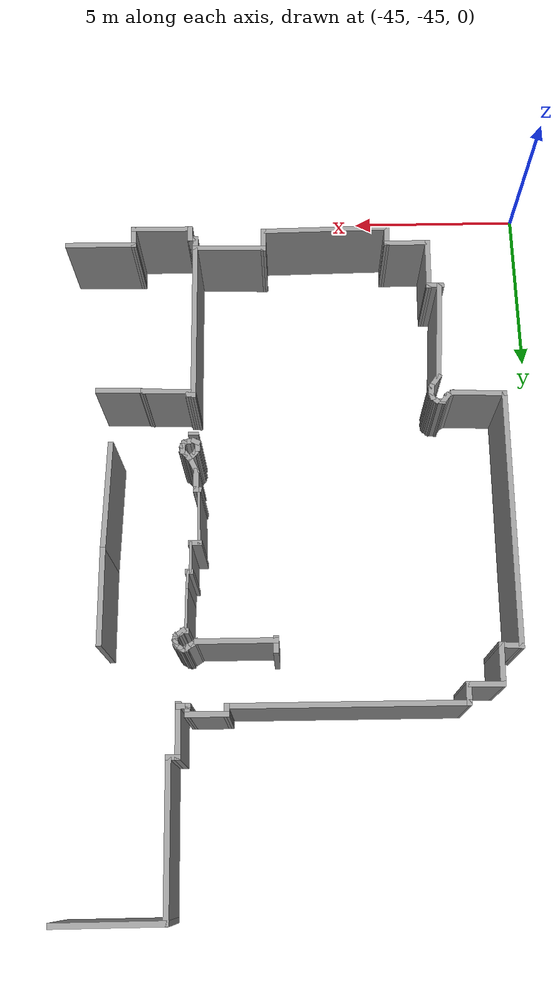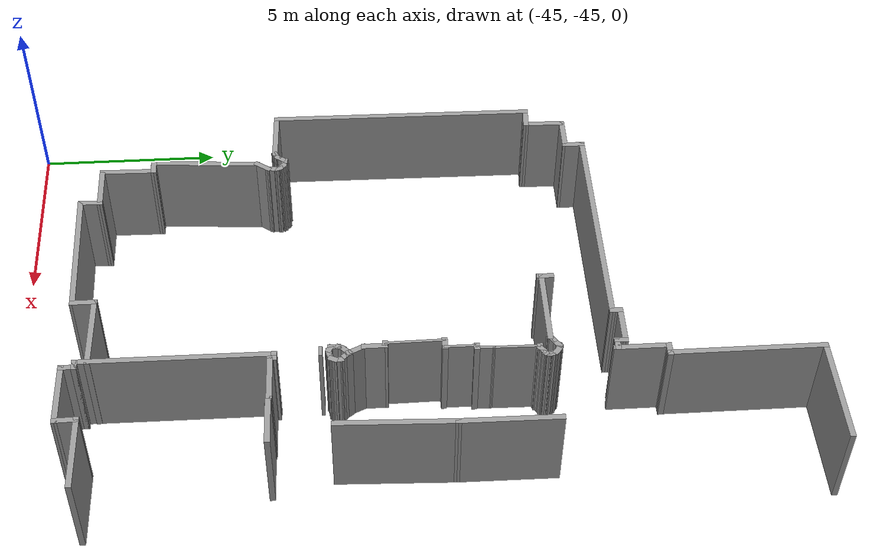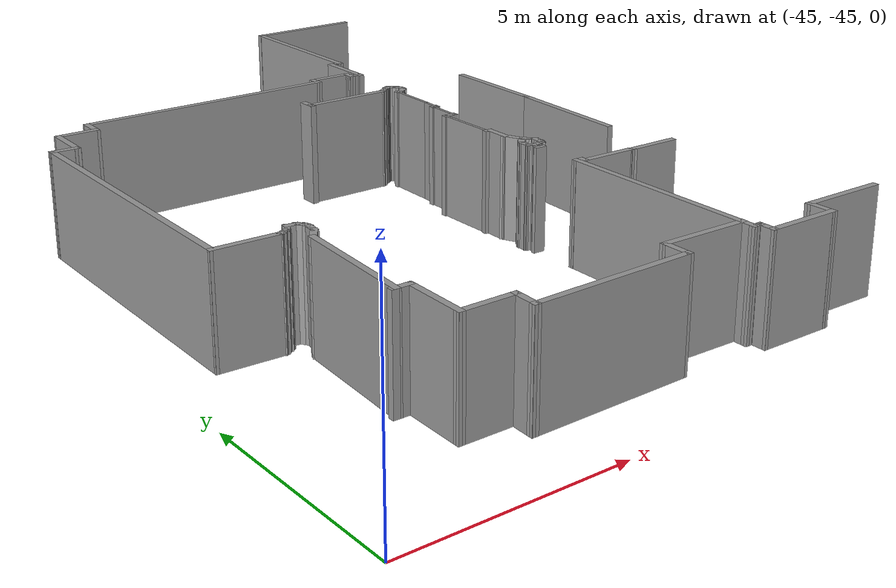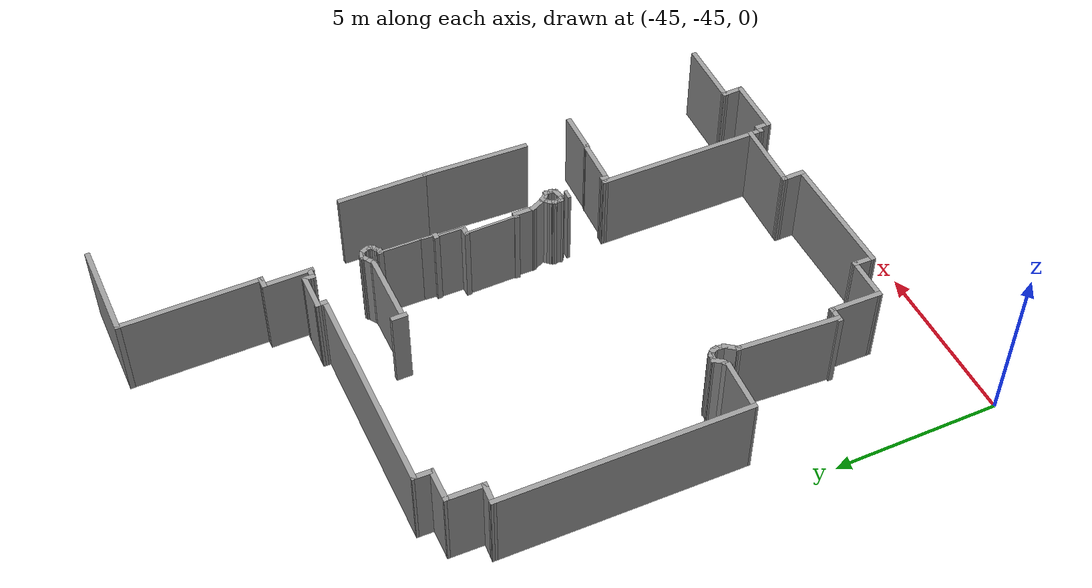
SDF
<sdf version="1.6">
 <model name="3_north">
  <pose>-14.229 -33.4428 0 0 -0 0</pose>
  <link name="Wall_1">
   <collision name="Wall_1_Collision">
    <geometry><box><size>1.5 0.15 2.5</size></box></geometry>
    <pose>0 0 1.25 0 -0 0</pose>
   </collision>
   <visual name="Wall_1_Visual">
    <pose>0 0 1.25 0 -0 0</pose>
    <geometry><box><size>1.5 0.15 2.5</size></box></geometry>
    <material>
     <script><uri>file://media/materials/scripts/gazebo.material</uri><name>Gazebo/Grey</name></script>
     <ambient>1 1 1 1</ambient>
    </material>
   </visual>
   <pose>-20.4742 4.82045 0 0 -0 1.5708</pose>
  </link>
  <link name="Wall_2">
   <collision name="Wall_2_Collision">
    <geometry><box><size>0.4 0.15 2.5</size></box></geometry>
    <pose>0 0 1.25 0 -0 0</pose>
   </collision>
   <visual name="Wall_2_Visual">
    <pose>0 0 1.25 0 -0 0</pose>
    <geometry><box><size>0.4 0.15 2.5</size></box></geometry>
    <material>
     <script><uri>file://media/materials/scripts/gazebo.material</uri><name>Gazebo/Grey</name></script>
     <ambient>1 1 1 1</ambient>
    </material>
   </visual>
   <pose>-20.3492 5.49545 0 0 -0 0</pose>
  </link>
  <link name="Wall_248">
   <collision name="Wall_248_Collision">
    <geometry><box><size>2.1053 0.15 2.5</size></box></geometry>
    <pose>0 0 1.25 0 -0 0</pose>
   </collision>
   <visual name="Wall_248_Visual">
    <pose>0 0 1.25 0 -0 0</pose>
    <geometry><box><size>2.1053 0.15 2.5</size></box></geometry>
    <material>
     <script><uri>file://media/materials/scripts/gazebo.material</uri><name>Gazebo/Grey</name></script>
     <ambient>1 1 1 1</ambient>
    </material>
   </visual>
   <pose>-18.005 -9.49655 0 0 -0 3.12395</pose>
  </link>
  <link name="Wall_249">
   <collision name="Wall_249_Collision">
    <geometry><box><size>0.690622 0.15 2.5</size></box></geometry>
    <pose>0 0 1.25 0 -0 0</pose>
   </collision>
   <visual name="Wall_249_Visual">
    <pose>0 0 1.25 0 -0 0</pose>
    <geometry><box><size>0.690622 0.15 2.5</size></box></geometry>
    <material>
     <script><uri>file://media/materials/scripts/gazebo.material</uri><name>Gazebo/Grey</name></script>
     <ambient>1 1 1 1</ambient>
    </material>
   </visual>
   <pose>-18.9768 -9.74955 0 0 0 -1.54952</pose>
  </link>
  <link name="Wall_250">
   <collision name="Wall_250_Collision">
    <geometry><box><size>1.82916 0.15 2.5</size></box></geometry>
    <pose>0 0 1.25 0 -0 0</pose>
   </collision>
   <visual name="Wall_250_Visual">
    <pose>0 0 1.25 0 -0 0</pose>
    <geometry><box><size>1.82916 0.15 2.5</size></box></geometry>
    <material>
     <script><uri>file://media/materials/scripts/gazebo.material</uri><name>Gazebo/Grey</name></script>
     <ambient>1 1 1 1</ambient>
    </material>
   </visual>
   <pose>-19.8105 -10.0083 0 0 -0 3.1279</pose>
  </link>
  <link name="Wall_251">
   <collision name="Wall_251_Collision">
    <geometry><box><size>0.4835 0.15 2.5</size></box></geometry>
    <pose>0 0 1.25 0 -0 0</pose>
   </collision>
   <visual name="Wall_251_Visual">
    <pose>0 0 1.25 0 -0 0</pose>
    <geometry><box><size>0.4835 0.15 2.5</size></box></geometry>
    <material>
     <script><uri>file://media/materials/scripts/gazebo.material</uri><name>Gazebo/Grey</name></script>
     <ambient>1 1 1 1</ambient>
    </material>
   </visual>
   <pose>-20.65 -9.83005 0 0 -0 1.5708</pose>
  </link>
  <link name="Wall_252">
   <collision name="Wall_252_Collision">
    <geometry><box><size>0.311 0.15 2.5</size></box></geometry>
    <pose>0 0 1.25 0 -0 0</pose>
   </collision>
   <visual name="Wall_252_Visual">
    <pose>0 0 1.25 0 -0 0</pose>
    <geometry><box><size>0.311 0.15 2.5</size></box></geometry>
    <material>
     <script><uri>file://media/materials/scripts/gazebo.material</uri><name>Gazebo/Grey</name></script>
     <ambient>1 1 1 1</ambient>
    </material>
   </visual>
   <pose>-20.7305 -9.6633 0 0 -0 3.14159</pose>
  </link>
  <link name="Wall_253">
   <collision name="Wall_253_Collision">
    <geometry><box><size>5.21005 0.15 2.5</size></box></geometry>
    <pose>0 0 1.25 0 -0 0</pose>
   </collision>
   <visual name="Wall_253_Visual">
    <pose>0 0 1.25 0 -0 0</pose>
    <geometry><box><size>5.21005 0.15 2.5</size></box></geometry>
    <material>
     <script><uri>file://media/materials/scripts/gazebo.material</uri><name>Gazebo/Grey</name></script>
     <ambient>1 1 1 1</ambient>
    </material>
   </visual>
   <pose>-20.7995 -7.1333 0 0 -0 1.56625</pose>
  </link>
  <link name="Wall_254">
   <collision name="Wall_254_Collision">
    <geometry><box><size>0.288478 0.15 2.5</size></box></geometry>
    <pose>0 0 1.25 0 -0 0</pose>
   </collision>
   <visual name="Wall_254_Visual">
    <pose>0 0 1.25 0 -0 0</pose>
    <geometry><box><size>0.288478 0.15 2.5</size></box></geometry>
    <material>
     <script><uri>file://media/materials/scripts/gazebo.material</uri><name>Gazebo/Grey</name></script>
     <ambient>1 1 1 1</ambient>
    </material>
   </visual>
   <pose>-20.719 -4.60905 0 0 0 -0.083141</pose>
  </link>
  <link name="Wall_255">
   <collision name="Wall_255_Collision">
    <geometry><box><size>0.242 0.15 2.5</size></box></geometry>
    <pose>0 0 1.25 0 -0 0</pose>
   </collision>
   <visual name="Wall_255_Visual">
    <pose>0 0 1.25 0 -0 0</pose>
    <geometry><box><size>0.242 0.15 2.5</size></box></geometry>
    <material>
     <script><uri>file://media/materials/scripts/gazebo.material</uri><name>Gazebo/Grey</name></script>
     <ambient>1 1 1 1</ambient>
    </material>
   </visual>
   <pose>-20.65 -4.6608 0 0 0 -1.5708</pose>
  </link>
  <link name="Wall_256">
   <collision name="Wall_256_Collision">
    <geometry><box><size>1.43846 0.15 2.5</size></box></geometry>
    <pose>0 0 1.25 0 -0 0</pose>
   </collision>
   <visual name="Wall_256_Visual">
    <pose>0 0 1.25 0 -0 0</pose>
    <geometry><box><size>1.43846 0.15 2.5</size></box></geometry>
    <material>
     <script><uri>file://media/materials/scripts/gazebo.material</uri><name>Gazebo/Grey</name></script>
     <ambient>1 1 1 1</ambient>
    </material>
   </visual>
   <pose>-20.006 -4.72405 0 0 0 -0.026779</pose>
  </link>
  <link name="Wall_257">
   <collision name="Wall_257_Collision">
    <geometry><box><size>0.244831 0.15 2.5</size></box></geometry>
    <pose>0 0 1.25 0 -0 0</pose>
   </collision>
   <visual name="Wall_257_Visual">
    <pose>0 0 1.25 0 -0 0</pose>
    <geometry><box><size>0.244831 0.15 2.5</size></box></geometry>
    <material>
     <script><uri>file://media/materials/scripts/gazebo.material</uri><name>Gazebo/Grey</name></script>
     <ambient>1 1 1 1</ambient>
    </material>
   </visual>
   <pose>-19.316 -4.7528 0 0 0 -0.244979</pose>
  </link>
  <link name="Wall_258">
   <collision name="Wall_258_Collision">
    <geometry><box><size>1.33648 0.15 2.5</size></box></geometry>
    <pose>0 0 1.25 0 -0 0</pose>
   </collision>
   <visual name="Wall_258_Visual">
    <pose>0 0 1.25 0 -0 0</pose>
    <geometry><box><size>1.33648 0.15 2.5</size></box></geometry>
    <material>
     <script><uri>file://media/materials/scripts/gazebo.material</uri><name>Gazebo/Grey</name></script>
     <ambient>1 1 1 1</ambient>
    </material>
   </visual>
   <pose>-18.6769 -4.77523 0 0 0 -0.018425</pose>
  </link>
  <link name="Wall_260">
   <collision name="Wall_260_Collision">
    <geometry><box><size>2.18039 0.15 2.5</size></box></geometry>
    <pose>0 0 1.25 0 -0 0</pose>
   </collision>
   <visual name="Wall_260_Visual">
    <pose>0 0 1.25 0 -0 0</pose>
    <geometry><box><size>2.18039 0.15 2.5</size></box></geometry>
    <material>
     <script><uri>file://media/materials/scripts/gazebo.material</uri><name>Gazebo/Grey</name></script>
     <ambient>1 1 1 1</ambient>
    </material>
   </visual>
   <pose>-21.8137 -9.31842 0 0 -0 3.11697</pose>
  </link>
  <link name="Wall_261">
   <collision name="Wall_261_Collision">
    <geometry><box><size>0.73 0.15 2.5</size></box></geometry>
    <pose>0 0 1.25 0 -0 0</pose>
   </collision>
   <visual name="Wall_261_Visual">
    <pose>0 0 1.25 0 -0 0</pose>
    <geometry><box><size>0.73 0.15 2.5</size></box></geometry>
    <material>
     <script><uri>file://media/materials/scripts/gazebo.material</uri><name>Gazebo/Grey</name></script>
     <ambient>1 1 1 1</ambient>
    </material>
   </visual>
   <pose>-22.8287 -9.58342 0 0 0 -1.5708</pose>
  </link>
  <link name="Wall_262">
   <collision name="Wall_262_Collision">
    <geometry><box><size>3.84034 0.15 2.5</size></box></geometry>
    <pose>0 0 1.25 0 -0 0</pose>
   </collision>
   <visual name="Wall_262_Visual">
    <pose>0 0 1.25 0 -0 0</pose>
    <geometry><box><size>3.84034 0.15 2.5</size></box></geometry>
    <material>
     <script><uri>file://media/materials/scripts/gazebo.material</uri><name>Gazebo/Grey</name></script>
     <ambient>1 1 1 1</ambient>
    </material>
   </visual>
   <pose>-24.6737 -9.89842 0 0 0 -3.12804</pose>
  </link>
  <link name="Wall_263">
   <collision name="Wall_263_Collision">
    <geometry><box><size>0.680377 0.15 2.5</size></box></geometry>
    <pose>0 0 1.25 0 -0 0</pose>
   </collision>
   <visual name="Wall_263_Visual">
    <pose>0 0 1.25 0 -0 0</pose>
    <geometry><box><size>0.680377 0.15 2.5</size></box></geometry>
    <material>
     <script><uri>file://media/materials/scripts/gazebo.material</uri><name>Gazebo/Grey</name></script>
     <ambient>1 1 1 1</ambient>
    </material>
   </visual>
   <pose>-26.5087 -9.65842 0 0 -0 1.53308</pose>
  </link>
  <link name="Wall_264">
   <collision name="Wall_264_Collision">
    <geometry><box><size>1.36 0.15 2.5</size></box></geometry>
    <pose>0 0 1.25 0 -0 0</pose>
   </collision>
   <visual name="Wall_264_Visual">
    <pose>0 0 1.25 0 -0 0</pose>
    <geometry><box><size>1.36 0.15 2.5</size></box></geometry>
    <material>
     <script><uri>file://media/materials/scripts/gazebo.material</uri><name>Gazebo/Grey</name></script>
     <ambient>1 1 1 1</ambient>
    </material>
   </visual>
   <pose>-27.1037 -9.39342 0 0 -0 3.14159</pose>
  </link>
  <link name="Wall_265">
   <collision name="Wall_265_Collision">
    <geometry><box><size>1.58031 0.15 2.5</size></box></geometry>
    <pose>0 0 1.25 0 -0 0</pose>
   </collision>
   <visual name="Wall_265_Visual">
    <pose>0 0 1.25 0 -0 0</pose>
    <geometry><box><size>1.58031 0.15 2.5</size></box></geometry>
    <material>
     <script><uri>file://media/materials/scripts/gazebo.material</uri><name>Gazebo/Grey</name></script>
     <ambient>1 1 1 1</ambient>
    </material>
   </visual>
   <pose>-27.6937 -8.67842 0 0 -0 1.54982</pose>
  </link>
  <link name="Wall_266">
   <collision name="Wall_266_Collision">
    <geometry><box><size>0.520135 0.15 2.5</size></box></geometry>
    <pose>0 0 1.25 0 -0 0</pose>
   </collision>
   <visual name="Wall_266_Visual">
    <pose>0 0 1.25 0 -0 0</pose>
    <geometry><box><size>0.520135 0.15 2.5</size></box></geometry>
    <material>
     <script><uri>file://media/materials/scripts/gazebo.material</uri><name>Gazebo/Grey</name></script>
     <ambient>1 1 1 1</ambient>
    </material>
   </visual>
   <pose>-27.8637 -7.96342 0 0 -0 3.14159</pose>
  </link>
  <link name="Wall_269">
   <collision name="Wall_269_Collision">
    <geometry><box><size>3.07754 0.15 2.5</size></box></geometry>
    <pose>0 0 1.25 0 -0 0</pose>
   </collision>
   <visual name="Wall_269_Visual">
    <pose>0 0 1.25 0 -0 0</pose>
    <geometry><box><size>3.07754 0.15 2.5</size></box></geometry>
    <material>
     <script><uri>file://media/materials/scripts/gazebo.material</uri><name>Gazebo/Grey</name></script>
     <ambient>1 1 1 1</ambient>
    </material>
   </visual>
   <pose>-27.8933 -6.50083 0 0 -0 1.50397</pose>
  </link>
  <link name="Wall_270">
   <collision name="Wall_270_Collision">
    <geometry><box><size>0.529674 0.15 2.5</size></box></geometry>
    <pose>0 0 1.25 0 -0 0</pose>
   </collision>
   <visual name="Wall_270_Visual">
    <pose>0 0 1.25 0 -0 0</pose>
    <geometry><box><size>0.529674 0.15 2.5</size></box></geometry>
    <material>
     <script><uri>file://media/materials/scripts/gazebo.material</uri><name>Gazebo/Grey</name></script>
     <ambient>1 1 1 1</ambient>
    </material>
   </visual>
   <pose>-27.6863 -4.88508 0 0 -0 0.957589</pose>
  </link>
  <link name="Wall_271">
   <collision name="Wall_271_Collision">
    <geometry><box><size>0.381147 0.15 2.5</size></box></geometry>
    <pose>0 0 1.25 0 -0 0</pose>
   </collision>
   <visual name="Wall_271_Visual">
    <pose>0 0 1.25 0 -0 0</pose>
    <geometry><box><size>0.381147 0.15 2.5</size></box></geometry>
    <material>
     <script><uri>file://media/materials/scripts/gazebo.material</uri><name>Gazebo/Grey</name></script>
     <ambient>1 1 1 1</ambient>
    </material>
   </visual>
   <pose>-27.5655 -4.61483 0 0 -0 1.47113</pose>
  </link>
  <link name="Wall_272">
   <collision name="Wall_272_Collision">
    <geometry><box><size>0.270064 0.15 2.5</size></box></geometry>
    <pose>0 0 1.25 0 -0 0</pose>
   </collision>
   <visual name="Wall_272_Visual">
    <pose>0 0 1.25 0 -0 0</pose>
    <geometry><box><size>0.270064 0.15 2.5</size></box></geometry>
    <material>
     <script><uri>file://media/materials/scripts/gazebo.material</uri><name>Gazebo/Grey</name></script>
     <ambient>1 1 1 1</ambient>
    </material>
   </visual>
   <pose>-27.5713 -4.44233 0 0 -0 1.86225</pose>
  </link>
  <link name="Wall_273">
   <collision name="Wall_273_Collision">
    <geometry><box><size>0.304717 0.15 2.5</size></box></geometry>
    <pose>0 0 1.25 0 -0 0</pose>
   </collision>
   <visual name="Wall_273_Visual">
    <pose>0 0 1.25 0 -0 0</pose>
    <geometry><box><size>0.304717 0.15 2.5</size></box></geometry>
    <material>
     <script><uri>file://media/materials/scripts/gazebo.material</uri><name>Gazebo/Grey</name></script>
     <ambient>1 1 1 1</ambient>
    </material>
   </visual>
   <pose>-27.646 -4.33308 0 0 -0 2.40878</pose>
  </link>
  <link name="Wall_274">
   <collision name="Wall_274_Collision">
    <geometry><box><size>0.335432 0.15 2.5</size></box></geometry>
    <pose>0 0 1.25 0 -0 0</pose>
   </collision>
   <visual name="Wall_274_Visual">
    <pose>0 0 1.25 0 -0 0</pose>
    <geometry><box><size>0.335432 0.15 2.5</size></box></geometry>
    <material>
     <script><uri>file://media/materials/scripts/gazebo.material</uri><name>Gazebo/Grey</name></script>
     <ambient>1 1 1 1</ambient>
    </material>
   </visual>
   <pose>-27.7955 -4.26983 0 0 -0 3.01724</pose>
  </link>
  <link name="Wall_275">
   <collision name="Wall_275_Collision">
    <geometry><box><size>0.389299 0.15 2.5</size></box></geometry>
    <pose>0 0 1.25 0 -0 0</pose>
   </collision>
   <visual name="Wall_275_Visual">
    <pose>0 0 1.25 0 -0 0</pose>
    <geometry><box><size>0.389299 0.15 2.5</size></box></geometry>
    <material>
     <script><uri>file://media/materials/scripts/gazebo.material</uri><name>Gazebo/Grey</name></script>
     <ambient>1 1 1 1</ambient>
    </material>
   </visual>
   <pose>-27.9565 -4.35608 0 0 0 -2.18546</pose>
  </link>
  <link name="Wall_276">
   <collision name="Wall_276_Collision">
    <geometry><box><size>0.319795 0.15 2.5</size></box></geometry>
    <pose>0 0 1.25 0 -0 0</pose>
   </collision>
   <visual name="Wall_276_Visual">
    <pose>0 0 1.25 0 -0 0</pose>
    <geometry><box><size>0.319795 0.15 2.5</size></box></geometry>
    <material>
     <script><uri>file://media/materials/scripts/gazebo.material</uri><name>Gazebo/Grey</name></script>
     <ambient>1 1 1 1</ambient>
    </material>
   </visual>
   <pose>-28.1003 -4.49408 0 0 0 -2.64765</pose>
  </link>
  <link name="Wall_277">
   <collision name="Wall_277_Collision">
    <geometry><box><size>1.61163 0.15 2.5</size></box></geometry>
    <pose>0 0 1.25 0 -0 0</pose>
   </collision>
   <visual name="Wall_277_Visual">
    <pose>0 0 1.25 0 -0 0</pose>
    <geometry><box><size>1.61163 0.15 2.5</size></box></geometry>
    <material>
     <script><uri>file://media/materials/scripts/gazebo.material</uri><name>Gazebo/Grey</name></script>
     <ambient>1 1 1 1</ambient>
    </material>
   </visual>
   <pose>-28.9053 -4.50558 0 0 -0 3.10224</pose>
  </link>
  <link name="Wall_278">
   <collision name="Wall_278_Collision">
    <geometry><box><size>7.40695 0.15 2.5</size></box></geometry>
    <pose>0 0 1.25 0 -0 0</pose>
   </collision>
   <visual name="Wall_278_Visual">
    <pose>0 0 1.25 0 -0 0</pose>
    <geometry><box><size>7.40695 0.15 2.5</size></box></geometry>
    <material>
     <script><uri>file://media/materials/scripts/gazebo.material</uri><name>Gazebo/Grey</name></script>
     <ambient>1 1 1 1</ambient>
    </material>
   </visual>
   <pose>-29.5895 -0.84858 0 0 -0 1.55812</pose>
  </link>
  <link name="Wall_280">
   <collision name="Wall_280_Collision">
    <geometry><box><size>0.6916 0.15 2.5</size></box></geometry>
    <pose>0 0 1.25 0 -0 0</pose>
   </collision>
   <visual name="Wall_280_Visual">
    <pose>0 0 1.25 0 -0 0</pose>
    <geometry><box><size>0.6916 0.15 2.5</size></box></geometry>
    <material>
     <script><uri>file://media/materials/scripts/gazebo.material</uri><name>Gazebo/Grey</name></script>
     <ambient>1 1 1 1</ambient>
    </material>
   </visual>
   <pose>-29.2733 2.76242 0 0 0 -0.063743</pose>
  </link>
  <link name="Wall_281">
   <collision name="Wall_281_Collision">
    <geometry><box><size>1.18526 0.15 2.5</size></box></geometry>
    <pose>0 0 1.25 0 -0 0</pose>
   </collision>
   <visual name="Wall_281_Visual">
    <pose>0 0 1.25 0 -0 0</pose>
    <geometry><box><size>1.18526 0.15 2.5</size></box></geometry>
    <material>
     <script><uri>file://media/materials/scripts/gazebo.material</uri><name>Gazebo/Grey</name></script>
     <ambient>1 1 1 1</ambient>
    </material>
   </visual>
   <pose>-28.9915 3.26267 0 0 -0 1.54858</pose>
  </link>
  <link name="Wall_282">
   <collision name="Wall_282_Collision">
    <geometry><box><size>1.05857 0.15 2.5</size></box></geometry>
    <pose>0 0 1.25 0 -0 0</pose>
   </collision>
   <visual name="Wall_282_Visual">
    <pose>0 0 1.25 0 -0 0</pose>
    <geometry><box><size>1.05857 0.15 2.5</size></box></geometry>
    <material>
     <script><uri>file://media/materials/scripts/gazebo.material</uri><name>Gazebo/Grey</name></script>
     <ambient>1 1 1 1</ambient>
    </material>
   </visual>
   <pose>-28.5258 3.77442 0 0 0 -0.012658</pose>
  </link>
  <link name="Wall_283">
   <collision name="Wall_283_Collision">
    <geometry><box><size>0.633137 0.15 2.5</size></box></geometry>
    <pose>0 0 1.25 0 -0 0</pose>
   </collision>
   <visual name="Wall_283_Visual">
    <pose>0 0 1.25 0 -0 0</pose>
    <geometry><box><size>0.633137 0.15 2.5</size></box></geometry>
    <material>
     <script><uri>file://media/materials/scripts/gazebo.material</uri><name>Gazebo/Grey</name></script>
     <ambient>1 1 1 1</ambient>
    </material>
   </visual>
   <pose>-28.0658 4.01017 0 0 -0 1.54699</pose>
  </link>
  <link name="Wall_284">
   <collision name="Wall_284_Collision">
    <geometry><box><size>6.47504 0.15 2.5</size></box></geometry>
    <pose>0 0 1.25 0 -0 0</pose>
   </collision>
   <visual name="Wall_284_Visual">
    <pose>0 0 1.25 0 -0 0</pose>
    <geometry><box><size>6.47504 0.15 2.5</size></box></geometry>
    <material>
     <script><uri>file://media/materials/scripts/gazebo.material</uri><name>Gazebo/Grey</name></script>
     <ambient>1 1 1 1</ambient>
    </material>
   </visual>
   <pose>-24.8975 4.23442 0 0 0 -0.005454</pose>
  </link>
  <link name="Wall_285">
   <collision name="Wall_285_Collision">
    <geometry><box><size>0.357 0.15 2.5</size></box></geometry>
    <pose>0 0 1.25 0 -0 0</pose>
   </collision>
   <visual name="Wall_285_Visual">
    <pose>0 0 1.25 0 -0 0</pose>
    <geometry><box><size>0.357 0.15 2.5</size></box></geometry>
    <material>
     <script><uri>file://media/materials/scripts/gazebo.material</uri><name>Gazebo/Grey</name></script>
     <ambient>1 1 1 1</ambient>
    </material>
   </visual>
   <pose>-21.735 4.32067 0 0 -0 1.5708</pose>
  </link>
  <link name="Wall_286">
   <collision name="Wall_286_Collision">
    <geometry><box><size>1.17356 0.15 2.5</size></box></geometry>
    <pose>0 0 1.25 0 -0 0</pose>
   </collision>
   <visual name="Wall_286_Visual">
    <pose>0 0 1.25 0 -0 0</pose>
    <geometry><box><size>1.17356 0.15 2.5</size></box></geometry>
    <material>
     <script><uri>file://media/materials/scripts/gazebo.material</uri><name>Gazebo/Grey</name></script>
     <ambient>1 1 1 1</ambient>
    </material>
   </visual>
   <pose>-21.2233 4.41842 0 0 0 -0.011235</pose>
  </link>
  <link name="Wall_287">
   <collision name="Wall_287_Collision">
    <geometry><box><size>0.368802 0.15 2.5</size></box></geometry>
    <pose>0 0 1.25 0 -0 0</pose>
   </collision>
   <visual name="Wall_287_Visual">
    <pose>0 0 1.25 0 -0 0</pose>
    <geometry><box><size>0.368802 0.15 2.5</size></box></geometry>
    <material>
     <script><uri>file://media/materials/scripts/gazebo.material</uri><name>Gazebo/Grey</name></script>
     <ambient>1 1 1 1</ambient>
    </material>
   </visual>
   <pose>-20.7173 4.30342 0 0 0 -1.62338</pose>
  </link>
  <link name="Wall_288">
   <collision name="Wall_288_Collision">
    <geometry><box><size>0.3915 0.15 2.5</size></box></geometry>
    <pose>0 0 1.25 0 -0 0</pose>
   </collision>
   <visual name="Wall_288_Visual">
    <pose>0 0 1.25 0 -0 0</pose>
    <geometry><box><size>0.3915 0.15 2.5</size></box></geometry>
    <material>
     <script><uri>file://media/materials/scripts/gazebo.material</uri><name>Gazebo/Grey</name></script>
     <ambient>1 1 1 1</ambient>
    </material>
   </visual>
   <pose>-20.6023 4.19417 0 0 -0 0</pose>
  </link>
  <link name="Wall_290">
   <collision name="Wall_290_Collision">
    <geometry><box><size>0.469384 0.15 2.5</size></box></geometry>
    <pose>0 0 1.25 0 -0 0</pose>
   </collision>
   <visual name="Wall_290_Visual">
    <pose>0 0 1.25 0 -0 0</pose>
    <geometry><box><size>0.469384 0.15 2.5</size></box></geometry>
    <material>
     <script><uri>file://media/materials/scripts/gazebo.material</uri><name>Gazebo/Grey</name></script>
     <ambient>1 1 1 1</ambient>
    </material>
   </visual>
   <pose>-23.044 2.61079 0 0 0 -1.5708</pose>
  </link>
  <link name="Wall_292">
   <collision name="Wall_292_Collision">
    <geometry><box><size>2.25437 0.15 2.5</size></box></geometry>
    <pose>0 0 1.25 0 -0 0</pose>
   </collision>
   <visual name="Wall_292_Visual">
    <pose>0 0 1.25 0 -0 0</pose>
    <geometry><box><size>2.25437 0.15 2.5</size></box></geometry>
    <material>
     <script><uri>file://media/materials/scripts/gazebo.material</uri><name>Gazebo/Grey</name></script>
     <ambient>1 1 1 1</ambient>
    </material>
   </visual>
   <pose>-21.9893 2.50183 0 0 0 -0.004132</pose>
  </link>
  <link name="Wall_293">
   <collision name="Wall_293_Collision">
    <geometry><box><size>0.294724 0.15 2.5</size></box></geometry>
    <pose>0 0 1.25 0 -0 0</pose>
   </collision>
   <visual name="Wall_293_Visual">
    <pose>0 0 1.25 0 -0 0</pose>
    <geometry><box><size>0.294724 0.15 2.5</size></box></geometry>
    <material>
     <script><uri>file://media/materials/scripts/gazebo.material</uri><name>Gazebo/Grey</name></script>
     <ambient>1 1 1 1</ambient>
    </material>
   </visual>
   <pose>-20.8763 2.53661 0 0 -0 0.571337</pose>
  </link>
  <link name="Wall_294">
   <collision name="Wall_294_Collision">
    <geometry><box><size>0.294724 0.15 2.5</size></box></geometry>
    <pose>0 0 1.25 0 -0 0</pose>
   </collision>
   <visual name="Wall_294_Visual">
    <pose>0 0 1.25 0 -0 0</pose>
    <geometry><box><size>0.294724 0.15 2.5</size></box></geometry>
    <material>
     <script><uri>file://media/materials/scripts/gazebo.material</uri><name>Gazebo/Grey</name></script>
     <ambient>1 1 1 1</ambient>
    </material>
   </visual>
   <pose>-20.7546 2.61488 0 0 -0 0.571337</pose>
  </link>
  <link name="Wall_295">
   <collision name="Wall_295_Collision">
    <geometry><box><size>0.217915 0.15 2.5</size></box></geometry>
    <pose>0 0 1.25 0 -0 0</pose>
   </collision>
   <visual name="Wall_295_Visual">
    <pose>0 0 1.25 0 -0 0</pose>
    <geometry><box><size>0.217915 0.15 2.5</size></box></geometry>
    <material>
     <script><uri>file://media/materials/scripts/gazebo.material</uri><name>Gazebo/Grey</name></script>
     <ambient>1 1 1 1</ambient>
    </material>
   </visual>
   <pose>-20.6676 2.67575 0 0 -0 0.694738</pose>
  </link>
  <link name="Wall_296">
   <collision name="Wall_296_Collision">
    <geometry><box><size>0.219565 0.15 2.5</size></box></geometry>
    <pose>0 0 1.25 0 -0 0</pose>
   </collision>
   <visual name="Wall_296_Visual">
    <pose>0 0 1.25 0 -0 0</pose>
    <geometry><box><size>0.219565 0.15 2.5</size></box></geometry>
    <material>
     <script><uri>file://media/materials/scripts/gazebo.material</uri><name>Gazebo/Grey</name></script>
     <ambient>1 1 1 1</ambient>
    </material>
   </visual>
   <pose>-20.6067 2.69748 0 0 -0 0</pose>
  </link>
  <link name="Wall_297">
   <collision name="Wall_297_Collision">
    <geometry><box><size>0.227776 0.15 2.5</size></box></geometry>
    <pose>0 0 1.25 0 -0 0</pose>
   </collision>
   <visual name="Wall_297_Visual">
    <pose>0 0 1.25 0 -0 0</pose>
    <geometry><box><size>0.227776 0.15 2.5</size></box></geometry>
    <material>
     <script><uri>file://media/materials/scripts/gazebo.material</uri><name>Gazebo/Grey</name></script>
     <ambient>1 1 1 1</ambient>
    </material>
   </visual>
   <pose>-20.5372 2.68009 0 0 0 -0.463648</pose>
  </link>
  <link name="Wall_298">
   <collision name="Wall_298_Collision">
    <geometry><box><size>0.261359 0.15 2.5</size></box></geometry>
    <pose>0 0 1.25 0 -0 0</pose>
   </collision>
   <visual name="Wall_298_Visual">
    <pose>0 0 1.25 0 -0 0</pose>
    <geometry><box><size>0.261359 0.15 2.5</size></box></geometry>
    <material>
     <script><uri>file://media/materials/scripts/gazebo.material</uri><name>Gazebo/Grey</name></script>
     <ambient>1 1 1 1</ambient>
    </material>
   </visual>
   <pose>-20.4589 2.62792 0 0 0 -0.674741</pose>
  </link>
  <link name="Wall_299">
   <collision name="Wall_299_Collision">
    <geometry><box><size>0.271116 0.15 2.5</size></box></geometry>
    <pose>0 0 1.25 0 -0 0</pose>
   </collision>
   <visual name="Wall_299_Visual">
    <pose>0 0 1.25 0 -0 0</pose>
    <geometry><box><size>0.271116 0.15 2.5</size></box></geometry>
    <material>
     <script><uri>file://media/materials/scripts/gazebo.material</uri><name>Gazebo/Grey</name></script>
     <ambient>1 1 1 1</ambient>
    </material>
   </visual>
   <pose>-20.3937 2.53661 0 0 0 -1.20362</pose>
  </link>
  <link name="Wall_3">
   <collision name="Wall_3_Collision">
    <geometry><box><size>4.15574 0.15 2.5</size></box></geometry>
    <pose>0 0 1.25 0 -0 0</pose>
   </collision>
   <visual name="Wall_3_Visual">
    <pose>0 0 1.25 0 -0 0</pose>
    <geometry><box><size>4.15574 0.15 2.5</size></box></geometry>
    <material>
     <script><uri>file://media/materials/scripts/gazebo.material</uri><name>Gazebo/Grey</name></script>
     <ambient>1 1 1 1</ambient>
    </material>
   </visual>
   <pose>-20.2371 7.49832 0 0 -0 1.57222</pose>
  </link>
  <link name="Wall_300">
   <collision name="Wall_300_Collision">
    <geometry><box><size>0.219565 0.15 2.5</size></box></geometry>
    <pose>0 0 1.25 0 -0 0</pose>
   </collision>
   <visual name="Wall_300_Visual">
    <pose>0 0 1.25 0 -0 0</pose>
    <geometry><box><size>0.219565 0.15 2.5</size></box></geometry>
    <material>
     <script><uri>file://media/materials/scripts/gazebo.material</uri><name>Gazebo/Grey</name></script>
     <ambient>1 1 1 1</ambient>
    </material>
   </visual>
   <pose>-20.372 2.44531 0 0 0 -1.5708</pose>
  </link>
  <link name="Wall_301">
   <collision name="Wall_301_Collision">
    <geometry><box><size>0.243655 0.15 2.5</size></box></geometry>
    <pose>0 0 1.25 0 -0 0</pose>
   </collision>
   <visual name="Wall_301_Visual">
    <pose>0 0 1.25 0 -0 0</pose>
    <geometry><box><size>0.243655 0.15 2.5</size></box></geometry>
    <material>
     <script><uri>file://media/materials/scripts/gazebo.material</uri><name>Gazebo/Grey</name></script>
     <ambient>1 1 1 1</ambient>
    </material>
   </visual>
   <pose>-20.3893 2.36705 0 0 0 -1.9513</pose>
  </link>
  <link name="Wall_302">
   <collision name="Wall_302_Collision">
    <geometry><box><size>0.251408 0.15 2.5</size></box></geometry>
    <pose>0 0 1.25 0 -0 0</pose>
   </collision>
   <visual name="Wall_302_Visual">
    <pose>0 0 1.25 0 -0 0</pose>
    <geometry><box><size>0.251408 0.15 2.5</size></box></geometry>
    <material>
     <script><uri>file://media/materials/scripts/gazebo.material</uri><name>Gazebo/Grey</name></script>
     <ambient>1 1 1 1</ambient>
    </material>
   </visual>
   <pose>-20.4502 2.29748 0 0 0 -2.60117</pose>
  </link>
  <link name="Wall_303">
   <collision name="Wall_303_Collision">
    <geometry><box><size>0.261359 0.15 2.5</size></box></geometry>
    <pose>0 0 1.25 0 -0 0</pose>
   </collision>
   <visual name="Wall_303_Visual">
    <pose>0 0 1.25 0 -0 0</pose>
    <geometry><box><size>0.261359 0.15 2.5</size></box></geometry>
    <material>
     <script><uri>file://media/materials/scripts/gazebo.material</uri><name>Gazebo/Grey</name></script>
     <ambient>1 1 1 1</ambient>
    </material>
   </visual>
   <pose>-20.5372 2.23662 0 0 0 -2.46685</pose>
  </link>
  <link name="Wall_304">
   <collision name="Wall_304_Collision">
    <geometry><box><size>0.219565 0.15 2.5</size></box></geometry>
    <pose>0 0 1.25 0 -0 0</pose>
   </collision>
   <visual name="Wall_304_Visual">
    <pose>0 0 1.25 0 -0 0</pose>
    <geometry><box><size>0.219565 0.15 2.5</size></box></geometry>
    <material>
     <script><uri>file://media/materials/scripts/gazebo.material</uri><name>Gazebo/Grey</name></script>
     <ambient>1 1 1 1</ambient>
    </material>
   </visual>
   <pose>-20.6153 2.20192 0 0 -0 3.13904</pose>
  </link>
  <link name="Wall_305">
   <collision name="Wall_305_Collision">
    <geometry><box><size>1.25292 0.07 2.5</size></box></geometry>
    <pose>0 0 1.25 0 -0 0</pose>
   </collision>
   <visual name="Wall_305_Visual">
    <pose>0 0 1.25 0 -0 0</pose>
    <geometry><box><size>1.25292 0.07 2.5</size></box></geometry>
    <material>
     <script><uri>file://media/materials/scripts/gazebo.material</uri><name>Gazebo/Grey</name></script>
     <ambient>1 1 1 1</ambient>
    </material>
   </visual>
   <pose>-20.659 1.61051 0 0 0 -1.58601</pose>
  </link>
  <link name="Wall_306">
   <collision name="Wall_306_Collision">
    <geometry><box><size>0.505329 0.07 2.5</size></box></geometry>
    <pose>0 0 1.25 0 -0 0</pose>
   </collision>
   <visual name="Wall_306_Visual">
    <pose>0 0 1.25 0 -0 0</pose>
    <geometry><box><size>0.505329 0.07 2.5</size></box></geometry>
    <material>
     <script><uri>file://media/materials/scripts/gazebo.material</uri><name>Gazebo/Grey</name></script>
     <ambient>1 1 1 1</ambient>
    </material>
   </visual>
   <pose>-20.681 0.801509 0 0 0 -1.6305</pose>
  </link>
  <link name="Wall_307">
   <collision name="Wall_307_Collision">
    <geometry><box><size>0.21087 0.15 2.5</size></box></geometry>
    <pose>0 0 1.25 0 -0 0</pose>
   </collision>
   <visual name="Wall_307_Visual">
    <pose>0 0 1.25 0 -0 0</pose>
    <geometry><box><size>0.21087 0.15 2.5</size></box></geometry>
    <material>
     <script><uri>file://media/materials/scripts/gazebo.material</uri><name>Gazebo/Grey</name></script>
     <ambient>1 1 1 1</ambient>
    </material>
   </visual>
   <pose>-20.7245 0.584009 0 0 -0 3.14159</pose>
  </link>
  <link name="Wall_308">
   <collision name="Wall_308_Collision">
    <geometry><box><size>0.878306 0.07 2.5</size></box></geometry>
    <pose>0 0 1.25 0 -0 0</pose>
   </collision>
   <visual name="Wall_308_Visual">
    <pose>0 0 1.25 0 -0 0</pose>
    <geometry><box><size>0.878306 0.07 2.5</size></box></geometry>
    <material>
     <script><uri>file://media/materials/scripts/gazebo.material</uri><name>Gazebo/Grey</name></script>
     <ambient>1 1 1 1</ambient>
    </material>
   </visual>
   <pose>-20.759 0.180009 0 0 0 -1.5807</pose>
  </link>
  <link name="Wall_309">
   <collision name="Wall_309_Collision">
    <geometry><box><size>0.376254 0.15 2.5</size></box></geometry>
    <pose>0 0 1.25 0 -0 0</pose>
   </collision>
   <visual name="Wall_309_Visual">
    <pose>0 0 1.25 0 -0 0</pose>
    <geometry><box><size>0.376254 0.15 2.5</size></box></geometry>
    <material>
     <script><uri>file://media/materials/scripts/gazebo.material</uri><name>Gazebo/Grey</name></script>
     <ambient>1 1 1 1</ambient>
    </material>
   </visual>
   <pose>-20.876 -0.223991 0 0 -0 3.14159</pose>
  </link>
  <link name="Wall_310">
   <collision name="Wall_310_Collision">
    <geometry><box><size>1.60079 0.07 2.5</size></box></geometry>
    <pose>0 0 1.25 0 -0 0</pose>
   </collision>
   <visual name="Wall_310_Visual">
    <pose>0 0 1.25 0 -0 0</pose>
    <geometry><box><size>1.60079 0.07 2.5</size></box></geometry>
    <material>
     <script><uri>file://media/materials/scripts/gazebo.material</uri><name>Gazebo/Grey</name></script>
     <ambient>1 1 1 1</ambient>
    </material>
   </visual>
   <pose>-20.9805 -0.989491 0 0 0 -1.55969</pose>
  </link>
  <link name="Wall_312">
   <collision name="Wall_312_Collision">
    <geometry><box><size>0.229926 0.15 2.5</size></box></geometry>
    <pose>0 0 1.25 0 -0 0</pose>
   </collision>
   <visual name="Wall_312_Visual">
    <pose>0 0 1.25 0 -0 0</pose>
    <geometry><box><size>0.229926 0.15 2.5</size></box></geometry>
    <material>
     <script><uri>file://media/materials/scripts/gazebo.material</uri><name>Gazebo/Grey</name></script>
     <ambient>1 1 1 1</ambient>
    </material>
   </visual>
   <pose>-20.9323 -1.75956 0 0 0 -0.114672</pose>
  </link>
  <link name="Wall_313">
   <collision name="Wall_313_Collision">
    <geometry><box><size>0.69 0.15 2.5</size></box></geometry>
    <pose>0 0 1.25 0 -0 0</pose>
   </collision>
   <visual name="Wall_313_Visual">
    <pose>0 0 1.25 0 -0 0</pose>
    <geometry><box><size>0.69 0.15 2.5</size></box></geometry>
    <material>
     <script><uri>file://media/materials/scripts/gazebo.material</uri><name>Gazebo/Grey</name></script>
     <ambient>1 1 1 1</ambient>
    </material>
   </visual>
   <pose>-20.8926 -2.03414 0 0 0 -1.5708</pose>
  </link>
  <link name="Wall_314">
   <collision name="Wall_314_Collision">
    <geometry><box><size>0.579535 0.15 2.5</size></box></geometry>
    <pose>0 0 1.25 0 -0 0</pose>
   </collision>
   <visual name="Wall_314_Visual">
    <pose>0 0 1.25 0 -0 0</pose>
    <geometry><box><size>0.579535 0.15 2.5</size></box></geometry>
    <material>
     <script><uri>file://media/materials/scripts/gazebo.material</uri><name>Gazebo/Grey</name></script>
     <ambient>1 1 1 1</ambient>
    </material>
   </visual>
   <pose>-20.8026 -2.49914 0 0 0 -1.13839</pose>
  </link>
  <link name="Wall_315">
   <collision name="Wall_315_Collision">
    <geometry><box><size>0.362132 0.15 2.5</size></box></geometry>
    <pose>0 0 1.25 0 -0 0</pose>
   </collision>
   <visual name="Wall_315_Visual">
    <pose>0 0 1.25 0 -0 0</pose>
    <geometry><box><size>0.362132 0.15 2.5</size></box></geometry>
    <material>
     <script><uri>file://media/materials/scripts/gazebo.material</uri><name>Gazebo/Grey</name></script>
     <ambient>1 1 1 1</ambient>
    </material>
   </visual>
   <pose>-20.7876 -2.76914 0 0 0 -2.35619</pose>
  </link>
  <link name="Wall_316">
   <collision name="Wall_316_Collision">
    <geometry><box><size>0.2753 0.15 2.5</size></box></geometry>
    <pose>0 0 1.25 0 -0 0</pose>
   </collision>
   <visual name="Wall_316_Visual">
    <pose>0 0 1.25 0 -0 0</pose>
    <geometry><box><size>0.2753 0.15 2.5</size></box></geometry>
    <material>
     <script><uri>file://media/materials/scripts/gazebo.material</uri><name>Gazebo/Grey</name></script>
     <ambient>1 1 1 1</ambient>
    </material>
   </visual>
   <pose>-20.8926 -2.89914 0 0 0 -2.07014</pose>
  </link>
  <link name="Wall_317">
   <collision name="Wall_317_Collision">
    <geometry><box><size>0.35 0.15 2.5</size></box></geometry>
    <pose>0 0 1.25 0 -0 0</pose>
   </collision>
   <visual name="Wall_317_Visual">
    <pose>0 0 1.25 0 -0 0</pose>
    <geometry><box><size>0.35 0.15 2.5</size></box></geometry>
    <material>
     <script><uri>file://media/materials/scripts/gazebo.material</uri><name>Gazebo/Grey</name></script>
     <ambient>1 1 1 1</ambient>
    </material>
   </visual>
   <pose>-20.9226 -3.05414 0 0 0 -1.5708</pose>
  </link>
  <link name="Wall_318">
   <collision name="Wall_318_Collision">
    <geometry><box><size>0.261803 0.15 2.5</size></box></geometry>
    <pose>0 0 1.25 0 -0 0</pose>
   </collision>
   <visual name="Wall_318_Visual">
    <pose>0 0 1.25 0 -0 0</pose>
    <geometry><box><size>0.261803 0.15 2.5</size></box></geometry>
    <material>
     <script><uri>file://media/materials/scripts/gazebo.material</uri><name>Gazebo/Grey</name></script>
     <ambient>1 1 1 1</ambient>
    </material>
   </visual>
   <pose>-20.8726 -3.17914 0 0 0 -0.463648</pose>
  </link>
  <link name="Wall_319">
   <collision name="Wall_319_Collision">
    <geometry><box><size>0.270416 0.15 2.5</size></box></geometry>
    <pose>0 0 1.25 0 -0 0</pose>
   </collision>
   <visual name="Wall_319_Visual">
    <pose>0 0 1.25 0 -0 0</pose>
    <geometry><box><size>0.270416 0.15 2.5</size></box></geometry>
    <material>
     <script><uri>file://media/materials/scripts/gazebo.material</uri><name>Gazebo/Grey</name></script>
     <ambient>1 1 1 1</ambient>
    </material>
   </visual>
   <pose>-20.7626 -3.19914 0 0 -0 0.083141</pose>
  </link>
  <link name="Wall_320">
   <collision name="Wall_320_Collision">
    <geometry><box><size>0.305242 0.15 2.5</size></box></geometry>
    <pose>0 0 1.25 0 -0 0</pose>
   </collision>
   <visual name="Wall_320_Visual">
    <pose>0 0 1.25 0 -0 0</pose>
    <geometry><box><size>0.305242 0.15 2.5</size></box></geometry>
    <material>
     <script><uri>file://media/materials/scripts/gazebo.material</uri><name>Gazebo/Grey</name></script>
     <ambient>1 1 1 1</ambient>
    </material>
   </visual>
   <pose>-20.6276 -3.17414 0 0 -0 0.260602</pose>
  </link>
  <link name="Wall_321">
   <collision name="Wall_321_Collision">
    <geometry><box><size>0.261803 0.15 2.5</size></box></geometry>
    <pose>0 0 1.25 0 -0 0</pose>
   </collision>
   <visual name="Wall_321_Visual">
    <pose>0 0 1.25 0 -0 0</pose>
    <geometry><box><size>0.261803 0.15 2.5</size></box></geometry>
    <material>
     <script><uri>file://media/materials/scripts/gazebo.material</uri><name>Gazebo/Grey</name></script>
     <ambient>1 1 1 1</ambient>
    </material>
   </visual>
   <pose>-20.5276 -3.10414 0 0 -0 1.10715</pose>
  </link>
  <link name="Wall_322">
   <collision name="Wall_322_Collision">
    <geometry><box><size>0.31 0.15 2.5</size></box></geometry>
    <pose>0 0 1.25 0 -0 0</pose>
   </collision>
   <visual name="Wall_322_Visual">
    <pose>0 0 1.25 0 -0 0</pose>
    <geometry><box><size>0.31 0.15 2.5</size></box></geometry>
    <material>
     <script><uri>file://media/materials/scripts/gazebo.material</uri><name>Gazebo/Grey</name></script>
     <ambient>1 1 1 1</ambient>
    </material>
   </visual>
   <pose>-20.5026 -2.97414 0 0 -0 1.5708</pose>
  </link>
  <link name="Wall_323">
   <collision name="Wall_323_Collision">
    <geometry><box><size>0.284536 0.15 2.5</size></box></geometry>
    <pose>0 0 1.25 0 -0 0</pose>
   </collision>
   <visual name="Wall_323_Visual">
    <pose>0 0 1.25 0 -0 0</pose>
    <geometry><box><size>0.284536 0.15 2.5</size></box></geometry>
    <material>
     <script><uri>file://media/materials/scripts/gazebo.material</uri><name>Gazebo/Grey</name></script>
     <ambient>1 1 1 1</ambient>
    </material>
   </visual>
   <pose>-20.5526 -2.84914 0 0 -0 2.40878</pose>
  </link>
  <link name="Wall_324">
   <collision name="Wall_324_Collision">
    <geometry><box><size>0.286015 0.15 2.5</size></box></geometry>
    <pose>0 0 1.25 0 -0 0</pose>
   </collision>
   <visual name="Wall_324_Visual">
    <pose>0 0 1.25 0 -0 0</pose>
    <geometry><box><size>0.286015 0.15 2.5</size></box></geometry>
    <material>
     <script><uri>file://media/materials/scripts/gazebo.material</uri><name>Gazebo/Grey</name></script>
     <ambient>1 1 1 1</ambient>
    </material>
   </visual>
   <pose>-20.6426 -2.74914 0 0 -0 2.19959</pose>
  </link>
  <link name="Wall_327">
   <collision name="Wall_327_Collision">
    <geometry><box><size>0.294088 0.1 2.5</size></box></geometry>
    <pose>0 0 1.25 0 -0 0</pose>
   </collision>
   <visual name="Wall_327_Visual">
    <pose>0 0 1.25 0 -0 0</pose>
    <geometry><box><size>0.294088 0.1 2.5</size></box></geometry>
    <material>
     <script><uri>file://media/materials/scripts/gazebo.material</uri><name>Gazebo/Grey</name></script>
     <ambient>1 1 1 1</ambient>
    </material>
   </visual>
   <pose>-20.802 -3.41749 0 0 0 -0.025767</pose>
  </link>
  <link name="Wall_368">
   <collision name="Wall_368_Collision">
    <geometry><box><size>3.21685 0.15 2.5</size></box></geometry>
    <pose>0 0 1.25 0 -0 0</pose>
   </collision>
   <visual name="Wall_368_Visual">
    <pose>0 0 1.25 0 -0 0</pose>
    <geometry><box><size>3.21685 0.15 2.5</size></box></geometry>
    <material>
     <script><uri>file://media/materials/scripts/gazebo.material</uri><name>Gazebo/Grey</name></script>
     <ambient>1 1 1 1</ambient>
    </material>
   </visual>
   <pose>-18.4295 -1.60807 0 0 -0 1.53219</pose>
  </link>
  <link name="Wall_370">
   <collision name="Wall_370_Collision">
    <geometry><box><size>2.72754 0.15 2.5</size></box></geometry>
    <pose>0 0 1.25 0 -0 0</pose>
   </collision>
   <visual name="Wall_370_Visual">
    <pose>0 0 1.25 0 -0 0</pose>
    <geometry><box><size>2.72754 0.15 2.5</size></box></geometry>
    <material>
     <script><uri>file://media/materials/scripts/gazebo.material</uri><name>Gazebo/Grey</name></script>
     <ambient>1 1 1 1</ambient>
    </material>
   </visual>
   <pose>-18.3605 1.21268 0 0 -0 1.56314</pose>
  </link>
  <link name="Wall_5">
   <collision name="Wall_5_Collision">
    <geometry><box><size>3 0.15 2.5</size></box></geometry>
    <pose>0 0 1.25 0 -0 0</pose>
   </collision>
   <visual name="Wall_5_Visual">
    <pose>0 0 1.25 0 -0 0</pose>
    <geometry><box><size>3 0.15 2.5</size></box></geometry>
    <material>
     <script><uri>file://media/materials/scripts/gazebo.material</uri><name>Gazebo/Grey</name></script>
     <ambient>1 1 1 1</ambient>
    </material>
   </visual>
   <pose>-18.8207 9.50691 0 0 -0 0</pose>
  </link>
  <static>1</static>
 </model>
</sdf>
